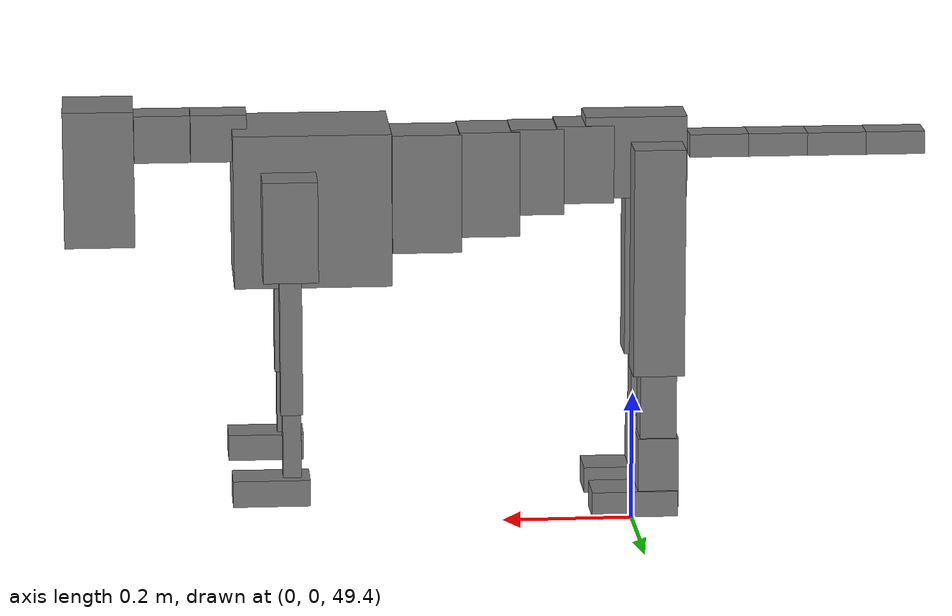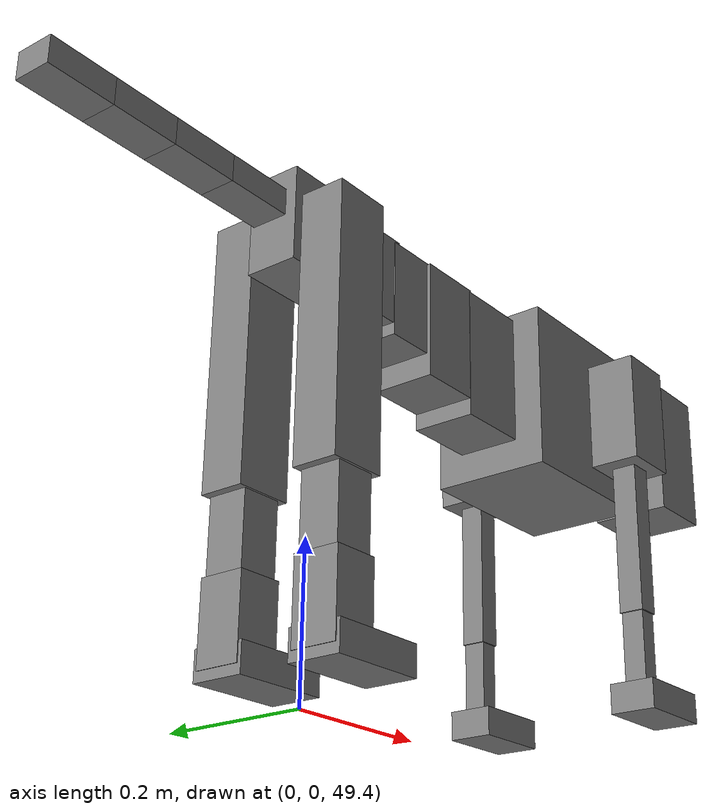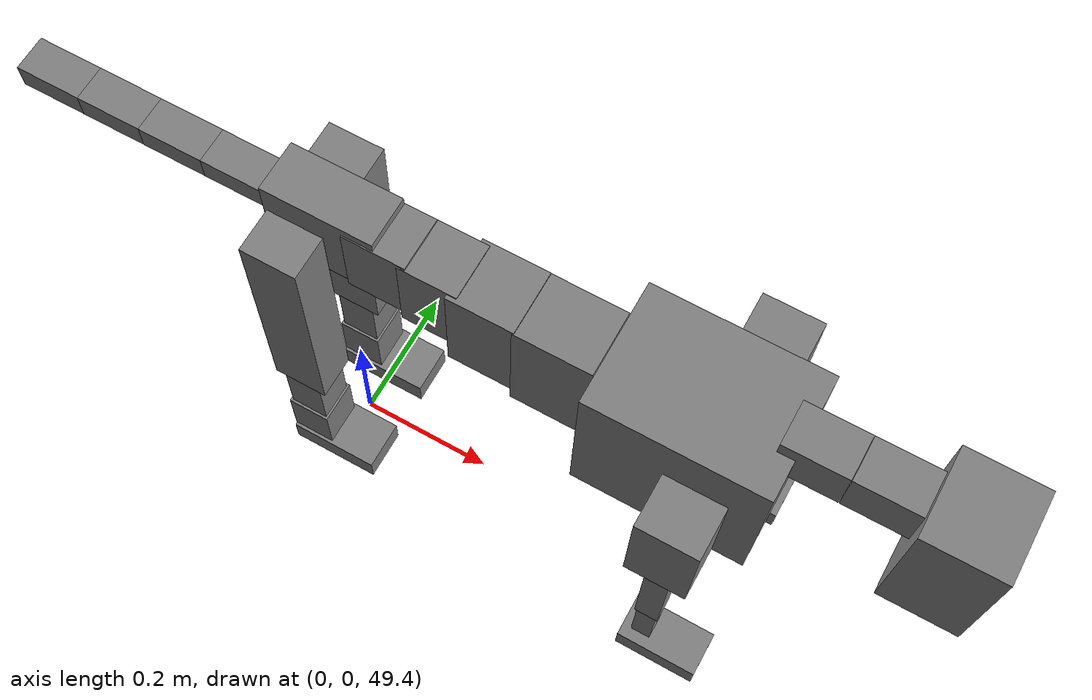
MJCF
<mujoco model="dog">

    <default>
        <joint armature="0.02" stiffness="1" damping="0.2" limited="true"/>
        <geom condim="3" friction="1 0.05 0.05" margin="0.01"/>
        <motor ctrllimited="true" ctrlrange="-1.0 1.0" forcelimited="true" gear="50"/>
    </default>

    <compiler inertiafromgeom="true" angle="radian"/>

    <option timestep="0.016" iterations="50" tolerance="1e-10" solver="Newton" jacobian="dense" cone="pyramidal"/>

    <size nconmax="20000" njmax="60000" nstack="5000000"/>
    <visual>
        <map force="0.1" zfar="30"/>
        <rgba haze="0.15 0.25 0.35 1"/>
        <quality shadowsize="2048"/>
        <global offwidth="800" offheight="800"/>
    </visual>

    <asset>
        <texture type="skybox" builtin="gradient" rgb1="0.3 0.5 0.7" rgb2="0 0 0" width="512" height="512"/>
        <texture name="texplane" type="2d" builtin="checker" rgb1=".2 .3 .4" rgb2=".1 0.15 0.2" width="512" height="512"
                 mark="cross" markrgb=".8 .8 .8"/>
        <texture name="texgeom" type="cube" builtin="flat" mark="cross" width="127" height="1278" rgb1="0.8 0.6 0.4"
                 rgb2="0.8 0.6 0.4" markrgb="1 1 1" random="0.01"/>

        <material name="matplane" reflectance="0.3" texture="texplane" texrepeat="1 1" texuniform="true"/>
        <material name="matgeom" texture="texgeom" texuniform="true" rgba="0.8 0.6 .4 1"/>
    </asset>

    <worldbody>
        <geom name="floor" pos="0 0 0" size="0 0 .25" type="plane" material="matplane" condim="3"/>

        <light directional="false" diffuse=".2 .2 .2" specular="0 0 0" pos="0 0 5" dir="0 0 -1" castshadow="false"/>
        <light mode="targetbodycom" target="torso" directional="false" diffuse=".8 .8 .8" specular="0.3 0.3 0.3"
               pos="0 0 4.0" dir="0 0 -1"/>

        <body name="root" pos="0 0 50">
            <freejoint name="root_1"/>
            <geom type="box" pos="0 0 -0.02" size="0.0774  0.0358  0.063" density="2030"/>

            <body name="spine1" pos="0.054 0 0">
                <joint name="spine1_y" axis="0 1 0" range="0 0.7" limited="true"/>
                <geom type="box" pos="0.02375 0 -0.03" size="0.04375  0.0375  0.05985" density="2030"/>

                <body name="spine2" pos="0.0612 0 0">
                    <joint name="spine2_y" axis="0 1 0" range="-0.15 0.15" limited="true"/>
                    <geom type="box" pos="0.03555  0  -0.04" size="0.04055  0.039  0.06615" density="2030"/>

                    <body name="spine3" pos="0.0730 0 0">
                        <joint name="spine3_y" axis="0 1 0" range="-0.15 0.15" limited="true"/>
                        <geom type="box" pos="0.03555  0  -0.057" size="0.04555  0.0445  0.081" density="2030"/>

                        <body name="spine4" pos="0.0780 0 0">
                            <joint name="spine4_y" axis="0 1 0" range="-0.15 0.15" limited="true"/>
                            <geom type="box" pos="0.05265  0  -0.07" size="0.05265  0.045  0.09135" density="2030"/>

                            <body name="torso" pos="0.1082 0 0">
                                <joint name="torso_y" axis="0 1 0" range="-0.15 0.15" limited="true"/>
                                <geom type="box" pos="0.11925  0  -0.085" size="0.11925  0.085  0.11745"
                                      density="2030"/>

                                <body name="neck1" pos="0.2160  0   0.0180">
                                    <joint name="neck1_y" axis="0 1 0" range="-1.2  -1" limited="true"/>
                                    <geom type="box" pos="0.0423  0  0" size="0.0423  0.03  0.036" density="2325"/>

                                    <body name="neck2" pos="0.0853  0  0">
                                        <joint name="neck2_y" axis="0 1 0" range="0.1  0" limited="true"/>
                                        <geom type="box" pos="0.0423  0  0" size="0.0423  0.03  0.036" density="2325"/>

                                        <body name="head" pos="0.0853  0  0">
                                            <joint name="head_y" axis="0 1 0" range="-0.3  -0.2" limited="true"/>
                                            <geom type="box" pos="0.0531  0  -0.055" size="0.0531  0.06  0.1044"
                                                  density="4030"/>

                                        </body>
                                    </body>
                                </body>

                                <body name="front_shoulder" pos="0.156  0   -0.0480">
                                    <joint name="front_shoulder_y" axis="0 1 0" range="-1 1.5" limited="true"/>
                                    <geom type="box" pos="0 0.13 -0.0503" size="0.0413  0.0353  0.0770" density="1158"/>
                                    <geom type="box" pos="0 -0.13 -0.0503" size="0.0413  0.0353  0.0770"
                                          density="1158"/>

                                    <body name="front_elbow" pos="0  0  -0.1007">
                                        <joint name="front_elbow_y" axis="0 1 0" range="-2 0" limited="true"/>
                                        <geom type="box" pos="0 0.13 -0.1180" size="0.0167  0.0171  0.1180"
                                              density="1081"/>
                                        <geom type="box" pos="0 -0.13 -0.1180" size="0.0167  0.0171  0.1180"
                                              density="1081"/>

                                        <body name="front_wrist" pos="0  0  -0.2361">
                                            <joint name="front_wrist_y" axis="0 1 0" range="-0.2 0" limited="true"/>
                                            <geom type="box" pos="0 0.13 -0.0564" size="0.0139  0.0154  0.0695"
                                                  density="1664"/>
                                            <geom type="box" pos="0 -0.13 -0.0564" size="0.0139  0.0154  0.0695"
                                                  density="1664"/>

                                            <body name="front_finger_end" pos="0  0  -0.1128">
                                                <joint name="front_finger_y" axis="0 1 0" range="-0.4 1"
                                                       limited="true"/>
                                                <geom type="box" pos="0.0318  0.13  -0.0052"
                                                      size="0.0583  0.0318  0.0202" density="1515"/>
                                                <geom type="box" pos="0.0318  -0.13  -0.0052"
                                                      size="0.0583  0.0318  0.0202" density="1515"/>

                                            </body>

                                        </body>
                                    </body>
                                </body>

                            </body>
                        </body>
                    </body>
                </body>
            </body>

            <body name="back_hip" pos="-0.03 0 -0.018">
                <joint name="back_hip_y" axis="0 1 0" range="-1.5 0.3" limited="true"/>
                <geom type="box" pos="0 0.07 -0.1534" size="0.0391  0.0306  0.1762" density="1154"/>
                <geom type="box" pos="0 -0.07 -0.1534" size="0.0391  0.0306  0.1762" density="1154"/>

                <body name="back_knee" pos="0  0  -0.3067">
                    <joint name="back_knee_y" axis="0 1 0" range="0 2.8" limited="true"/>
                    <geom type="box" pos="0 0.07 -0.0662" size="0.0277  0.0273  0.0817" density="1227"/>
                    <geom type="box" pos="0 -0.07 -0.0662" size="0.0277  0.0273  0.0817" density="1227"/>

                    <body name="back_ankle" pos="0  0  -0.1323">
                        <joint name="back_ankle_y" axis="0 1 0" range="-2.2 0" limited="true"/>
                        <geom type="box" pos="0 0.07 -0.0430" size="0.0310  0.0310  0.0543" density="1284"/>
                        <geom type="box" pos="0 -0.07 -0.0430" size="0.0310  0.0310  0.0543" density="1284"/>

                        <body name="back_toe_end" pos="0  0  -0.0861">
                            <joint name="back_toe_y" axis="0 1 0" range="-0.4 1" limited="true"/>
                            <geom type="box" pos="0.0357  0.07  -0.0048" size="0.0655  0.0357  0.0198" density="1515"/>
                            <geom type="box" pos="0.0357  -0.07  -0.0048" size="0.0655  0.0357  0.0198" density="1515"/>

                        </body>
                    </body>
                </body>
            </body>

            <body name="tail1" pos="-0.074 0 -0.006">
                <joint name="tail1_y" axis="0 1 0" range="-0.2 0.2" limited="true"/>
                <geom type="box" pos="-0.0536  0  0" size="0.045  0.025  0.0175" density="1587"/>

                <body name="tail2" pos="-0.09 0 0">
                    <joint name="tail2_y" axis="0 1 0" range="-0.2 0.2" limited="true"/>
                    <geom type="box" pos="-0.0536  0  0" size="0.045  0.025  0.0175" density="1587"/>

                    <body name="tail3" pos="-0.09 0 0">
                        <joint name="tail3_y" axis="0 1 0" range="-0.2 0.2" limited="true"/>
                        <geom type="box" pos="-0.0536  0  0" size="0.045  0.025  0.0175" density="1587"/>

                        <body name="tail4" pos="-0.09 0 0">
                            <joint name="tail4_y" axis="0 1 0" range="-0.2 0.2" limited="true"/>
                            <geom type="box" pos="-0.0536  0  0" size="0.045  0.025  0.0175" density="1587"/>

                        </body>
                    </body>
                </body>
            </body>
        </body>
    </worldbody>

    <actuator>
        <motor joint="spine1_y" forcerange="-150 150     "/>
        <motor joint="spine2_y" forcerange="-150 150     "/>
        <motor joint="spine3_y" forcerange="-150 150     "/>
        <motor joint="spine4_y" forcerange="-150 150     "/>
        <motor joint="torso_y" forcerange="-150 150     "/>
        <motor joint="neck1_y" forcerange="-100 100       "/>
        <motor joint="neck2_y" forcerange="-100 100       "/>
        <motor joint="head_y" forcerange="-150 150       "/>
        <motor joint="front_shoulder_y" forcerange="-148.88 186.73"/>
        <motor joint="front_elbow_y" forcerange="-103.59 120.57"/>
        <motor joint="front_wrist_y" forcerange="-52.66 70.47"/>
        <motor joint="front_finger_y" forcerange="-88.22 41.50"/>
        <motor joint="back_hip_y" forcerange="-376.69 231.97"/>
        <motor joint="back_knee_y" forcerange="-321.57 275.63"/>
        <motor joint="back_angle_y" forcerange="-193.09 203.18"/>
        <motor joint="back_toe_y" forcerange="-116.09 89.53"/>
        <motor joint="tail1_y" forcerange="-50 50     "/>
        <motor joint="tail2_y" forcerange="-50 50     "/>
        <motor joint="tail3_y" forcerange="-50 50     "/>
        <motor joint="tail4_y" forcerange="-50 50     "/>
    </actuator>
</mujoco>
